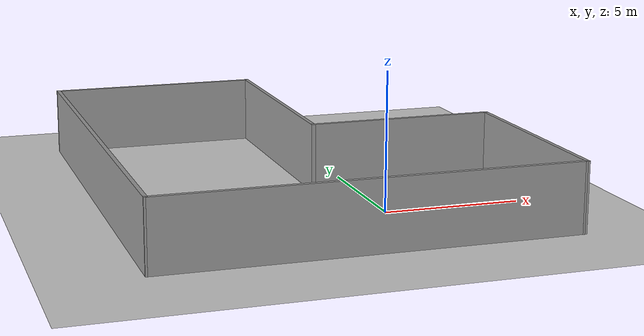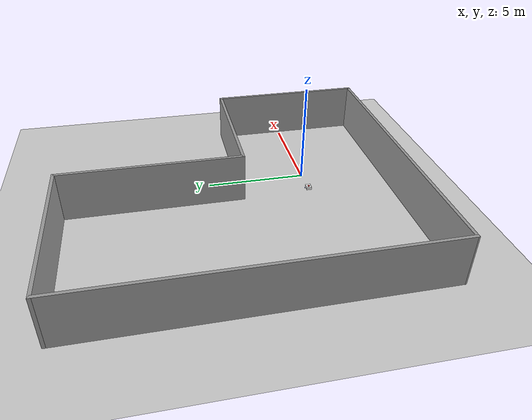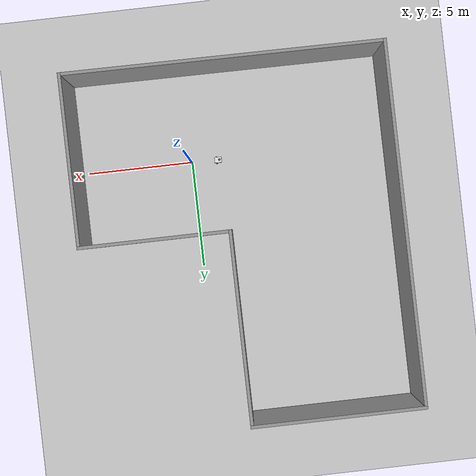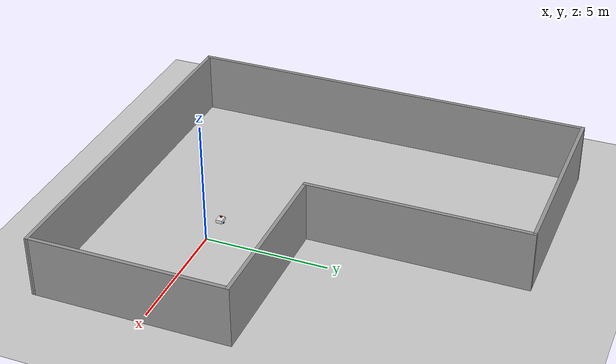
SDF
<sdf version="1.7">
 <world name="default">
  <light name="sun" type="directional">
   <pose>0 0 10 0 -0 0</pose>
   <diffuse>0.8 0.8 0.8 1</diffuse>
   <specular>0.2 0.2 0.2 1</specular>
   <attenuation>
    <range>1000</range>
    <constant>0.9</constant>
    <linear>0.01</linear>
    <quadratic>0.001</quadratic>
   </attenuation>
   <direction>-0.5 0.1 -0.9</direction>
   <spot><inner_angle>0</inner_angle><outer_angle>0</outer_angle><falloff>0</falloff></spot>
  </light>
  <model name="ground_plane">
   <static>1</static>
   <link name="link">
    <collision name="collision">
     <geometry><plane><normal>0 0 1</normal><size>100 100</size></plane></geometry>
     <surface><friction><ode><mu>100</mu><mu2>50</mu2></ode></friction></surface>
    </collision>
    <visual name="visual">
     <cast_shadows>0</cast_shadows>
     <geometry><plane><normal>0 0 1</normal><size>100 100</size></plane></geometry>
     <material>
      <script><uri>file://media/materials/scripts/gazebo.material</uri><name>Gazebo/Grey</name></script>
     </material>
    </visual>
   </link>
  </model>
  <model name="warehouse_building">
   <pose>-2 4.00005 0 0 -0 0</pose>
   <link name="Wall_0">
    <collision name="Wall_0_Collision">
     <geometry><box><size>8 0.15 2.5</size></box></geometry>
     <pose>0 0 1.25 0 -0 0</pose>
    </collision>
    <visual name="Wall_0_Visual">
     <pose>0 0 1.25 0 -0 0</pose>
     <geometry><box><size>8 0.15 2.5</size></box></geometry>
     <material>
      <script><uri>file://media/materials/scripts/gazebo.material</uri><name>Gazebo/Grey</name></script>
      <ambient>1 1 1 1</ambient>
     </material>
     <meta><layer>0</layer></meta>
    </visual>
    <pose>-3.425 8.35025 0 0 -0 0</pose>
   </link>
   <link name="Wall_1">
    <collision name="Wall_1_Collision">
     <geometry><box><size>9 0.15 2.5</size></box></geometry>
     <pose>0 0 1.25 0 -0 0</pose>
    </collision>
    <visual name="Wall_1_Visual">
     <pose>0 0 1.25 0 -0 0</pose>
     <geometry><box><size>9 0.15 2.5</size></box></geometry>
     <material>
      <script><uri>file://media/materials/scripts/gazebo.material</uri><name>Gazebo/Grey</name></script>
      <ambient>1 1 1 1</ambient>
     </material>
     <meta><layer>0</layer></meta>
    </visual>
    <pose>0.5 3.92525 0 0 -0 -1.5708</pose>
   </link>
   <link name="Wall_2">
    <collision name="Wall_2_Collision">
     <geometry><box><size>7 0.15 2.5</size></box></geometry>
     <pose>0 0 1.25 0 -0 0</pose>
    </collision>
    <visual name="Wall_2_Visual">
     <pose>0 0 1.25 0 -0 0</pose>
     <geometry><box><size>7 0.15 2.5</size></box></geometry>
     <material>
      <script><uri>file://media/materials/scripts/gazebo.material</uri><name>Gazebo/Grey</name></script>
      <ambient>1 1 1 1</ambient>
     </material>
     <meta><layer>0</layer></meta>
    </visual>
    <pose>3.925 -0.499746 0 0 -0 0</pose>
   </link>
   <link name="Wall_3">
    <collision name="Wall_3_Collision">
     <geometry><box><size>8 0.15 2.5</size></box></geometry>
     <pose>0 0 1.25 0 -0 0</pose>
    </collision>
    <visual name="Wall_3_Visual">
     <pose>0 0 1.25 0 -0 0</pose>
     <geometry><box><size>8 0.15 2.5</size></box></geometry>
     <material>
      <script><uri>file://media/materials/scripts/gazebo.material</uri><name>Gazebo/Grey</name></script>
      <ambient>1 1 1 1</ambient>
     </material>
     <meta><layer>0</layer></meta>
    </visual>
    <pose>7.35 -4.42475 0 0 -0 -1.5708</pose>
   </link>
   <link name="Wall_7">
    <collision name="Wall_7_Collision">
     <geometry><box><size>16.75 0.15 2.5</size></box></geometry>
     <pose>0 0 1.25 0 -0 0</pose>
    </collision>
    <visual name="Wall_7_Visual">
     <pose>0 0 1.25 0 -0 0</pose>
     <geometry><box><size>16.75 0.15 2.5</size></box></geometry>
     <material>
      <script><uri>file://media/materials/scripts/gazebo.material</uri><name>Gazebo/Grey</name></script>
      <ambient>1 1 1 1</ambient>
     </material>
     <meta><layer>0</layer></meta>
    </visual>
    <pose>-7.35 0.050254 0 0 -0 -1.5708</pose>
   </link>
   <link name="Wall_9">
    <collision name="Wall_9_Collision">
     <geometry><box><size>14.8503 0.15 2.5</size></box></geometry>
     <pose>0 0 1.25 0 -0 0</pose>
    </collision>
    <visual name="Wall_9_Visual">
     <pose>0 0 1.25 0 -0 0</pose>
     <geometry><box><size>14.8503 0.15 2.5</size></box></geometry>
     <material>
      <script><uri>file://media/materials/scripts/gazebo.material</uri><name>Gazebo/Grey</name></script>
      <ambient>1 1 1 1</ambient>
     </material>
     <meta><layer>0</layer></meta>
    </visual>
    <pose>0 -8.29975 0 0 -0 -0.006803</pose>
   </link>
   <static>1</static>
  </model>
  <gravity>0 0 -9.8</gravity>
  <magnetic_field>6e-06 2.3e-05 -4.2e-05</magnetic_field>
  <atmosphere type="adiabatic"/>
  <physics type="ode">
   <max_step_size>0.001</max_step_size>
   <real_time_factor>1</real_time_factor>
   <real_time_update_rate>1000</real_time_update_rate>
  </physics>
  <scene><ambient>0.4 0.4 0.4 1</ambient><background>0.7 0.7 0.7 1</background><shadows>1</shadows></scene>
  <audio><device>default</device></audio>
  <spherical_coordinates>
   <surface_model>EARTH_WGS84</surface_model>
   <latitude_deg>0</latitude_deg>
   <longitude_deg>0</longitude_deg>
   <elevation>0</elevation>
   <heading_deg>0</heading_deg>
  </spherical_coordinates>
  <model name="my_bot">
   <link name="base_link">
    <inertial>
     <pose>-0.071082 0 0.075016 0 -0 0</pose>
     <mass>0.61</mass>
     <inertia>
      <ixx>0.00483178</ixx>
      <ixy>0</ixy>
      <ixz>0.000515799</ixz>
      <iyy>0.00702641</iyy>
      <iyz>0</iyz>
      <izz>0.0081721</izz>
     </inertia>
    </inertial>
    <collision name="base_link_fixed_joint_lump__chassis_collision">
     <pose>-0.0585 0 0.059 0 -0 0</pose>
     <geometry><box><size>0.335 0.265 0.138</size></box></geometry>
    </collision>
    <collision name="base_link_fixed_joint_lump__caster_wheel_collision_1">
     <pose>-0.151 0 -0.024 0 -0 0</pose>
     <geometry><sphere><radius>0.01</radius></sphere></geometry>
     <surface><friction><ode><mu>0.001</mu><mu2>0.001</mu2></ode></friction></surface>
    </collision>
    <collision name="base_link_fixed_joint_lump__laser_frame_collision_2">
     <pose>-0.126 0 0.165 0 -0 0</pose>
     <geometry><cylinder><length>0.04</length><radius>0.05</radius></cylinder></geometry>
    </collision>
    <visual name="base_link_fixed_joint_lump__chassis_visual">
     <pose>-0.0585 0 0.059 0 -0 0</pose>
     <geometry><box><size>0.335 0.265 0.138</size></box></geometry>
     <material>
      <script><name>Gazebo/White</name><uri>file://media/materials/scripts/gazebo.material</uri></script>
     </material>
    </visual>
    <visual name="base_link_fixed_joint_lump__caster_wheel_visual_1">
     <pose>-0.151 0 -0.024 0 -0 0</pose>
     <geometry><sphere><radius>0.01</radius></sphere></geometry>
     <material>
      <script><name>Gazebo/Black</name><uri>file://media/materials/scripts/gazebo.material</uri></script>
     </material>
    </visual>
    <visual name="base_link_fixed_joint_lump__laser_frame_visual_2">
     <pose>-0.126 0 0.165 0 -0 0</pose>
     <geometry><cylinder><length>0.04</length><radius>0.05</radius></cylinder></geometry>
     <material>
      <script><name>Gazebo/Red</name><uri>file://media/materials/scripts/gazebo.material</uri></script>
     </material>
    </visual>
    <sensor name="laser" type="ray">
     <visualize>1</visualize>
     <update_rate>30</update_rate>
     <ray>
      <scan>
       <horizontal>
        <samples>360</samples>
        <resolution>1</resolution>
        <min_angle>-3.14</min_angle>
        <max_angle>3.14</max_angle>
       </horizontal>
       <vertical><samples>1</samples><min_angle>0</min_angle><max_angle>0</max_angle></vertical>
      </scan>
      <range><min>0.3</min><max>12</max><resolution>0.01</resolution></range>
     </ray>
     <plugin name="laser_controller" filename="libgazebo_ros_ray_sensor.so">
      <ros><remapping>~/out:=scan</remapping></ros>
      <output_type>sensor_msgs/LaserScan</output_type>
      <frame_name>laser_frame</frame_name>
      <use_sim_time>1</use_sim_time>
     </plugin>
     <pose>-0.126 0 0.165 0 -0 0</pose>
    </sensor>
   </link>
   <joint name="left_wheel_joint" type="revolute">
    <pose relative_to="base_link">0 0.166 0 -1.5708 0 0</pose>
    <parent>base_link</parent>
    <child>left_wheel</child>
    <axis>
     <xyz>0 0 1</xyz>
     <limit><lower>-1e+16</lower><upper>1e+16</upper></limit>
     <dynamics><spring_reference>0</spring_reference><spring_stiffness>0</spring_stiffness></dynamics>
    </axis>
   </joint>
   <link name="left_wheel">
    <pose relative_to="left_wheel_joint">0 0 0 0 -0 0</pose>
    <inertial>
     <mass>0.05</mass>
     <inertia>
      <ixx>1.72667e-05</ixx>
      <ixy>0</ixy>
      <ixz>0</ixz>
      <iyy>1.72667e-05</iyy>
      <iyz>0</iyz>
      <izz>2.89e-05</izz>
     </inertia>
    </inertial>
    <collision name="left_wheel_collision">
     <geometry><sphere><radius>0.034</radius></sphere></geometry>
    </collision>
    <visual name="left_wheel_visual">
     <geometry><cylinder><length>0.026</length><radius>0.034</radius></cylinder></geometry>
     <material>
      <script><name>Gazebo/Blue</name><uri>file://media/materials/scripts/gazebo.material</uri></script>
     </material>
    </visual>
   </link>
   <joint name="right_wheel_joint" type="revolute">
    <pose relative_to="base_link">0 -0.166 0 1.5708 -0 0</pose>
    <parent>base_link</parent>
    <child>right_wheel</child>
    <axis>
     <xyz>0 0 -1</xyz>
     <limit><lower>-1e+16</lower><upper>1e+16</upper></limit>
     <dynamics><spring_reference>0</spring_reference><spring_stiffness>0</spring_stiffness></dynamics>
    </axis>
   </joint>
   <link name="right_wheel">
    <pose relative_to="right_wheel_joint">0 0 0 0 -0 0</pose>
    <inertial>
     <mass>0.05</mass>
     <inertia>
      <ixx>1.72667e-05</ixx>
      <ixy>0</ixy>
      <ixz>0</ixz>
      <iyy>1.72667e-05</iyy>
      <iyz>0</iyz>
      <izz>2.89e-05</izz>
     </inertia>
    </inertial>
    <collision name="right_wheel_collision">
     <geometry><sphere><radius>0.034</radius></sphere></geometry>
    </collision>
    <visual name="right_wheel_visual">
     <geometry><cylinder><length>0.026</length><radius>0.034</radius></cylinder></geometry>
     <material>
      <script><name>Gazebo/Blue</name><uri>file://media/materials/scripts/gazebo.material</uri></script>
     </material>
    </visual>
   </link>
   <static>0</static>
   <plugin name="diff_drive" filename="libgazebo_ros_diff_drive.so">
    <left_joint>left_wheel_joint</left_joint>
    <right_joint>right_wheel_joint</right_joint>
    <wheel_separation>0.35</wheel_separation>
    <wheel_diameter>0.1</wheel_diameter>
    <max_wheel_torque>200</max_wheel_torque>
    <max_wheel_acceleration>10.0</max_wheel_acceleration>
    <odometry_frame>odom</odometry_frame>
    <robot_base_frame>base_link</robot_base_frame>
    <publish_odom>1</publish_odom>
    <publish_odom_tf>1</publish_odom_tf>
    <publish_wheel_tf>1</publish_wheel_tf>
   </plugin>
   <pose>-1.20447 0.002029 0.033996 0 2.5e-05 -0.001217</pose>
  </model>
 </world>
</sdf>
